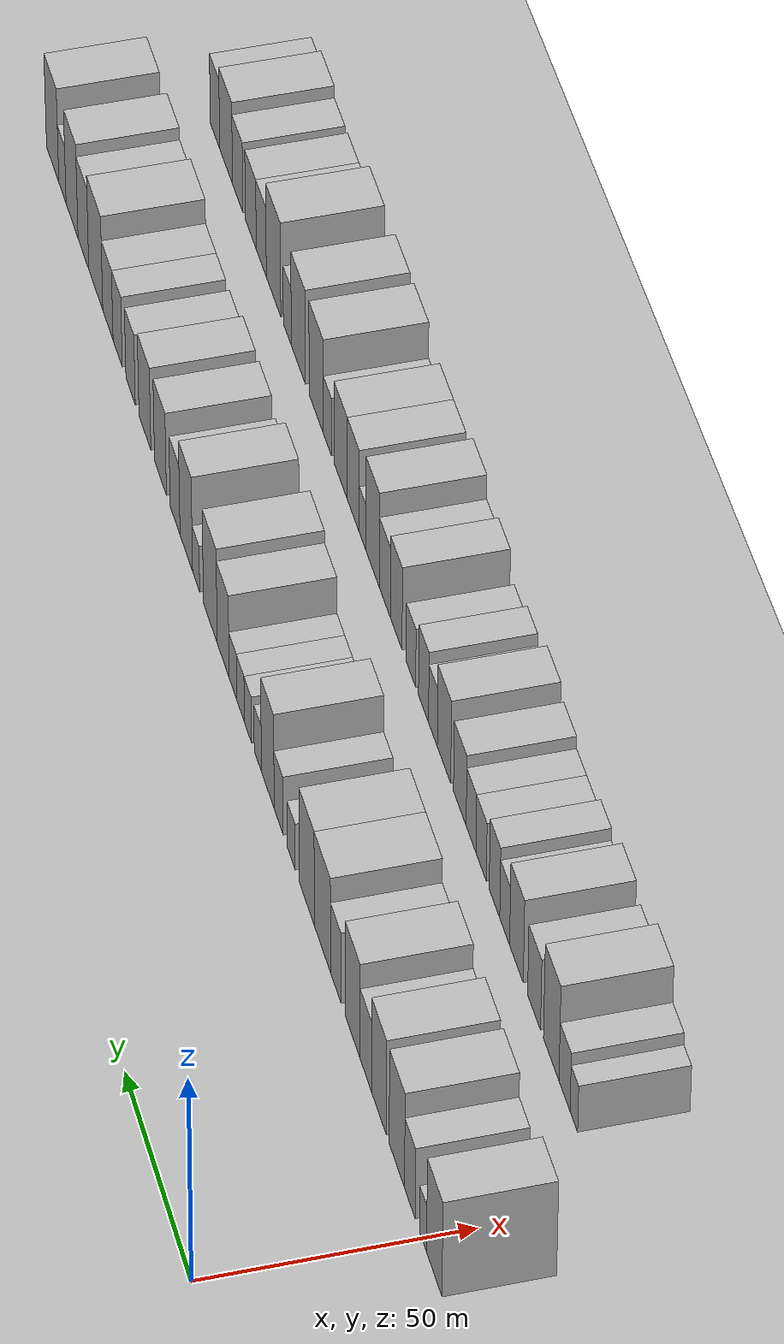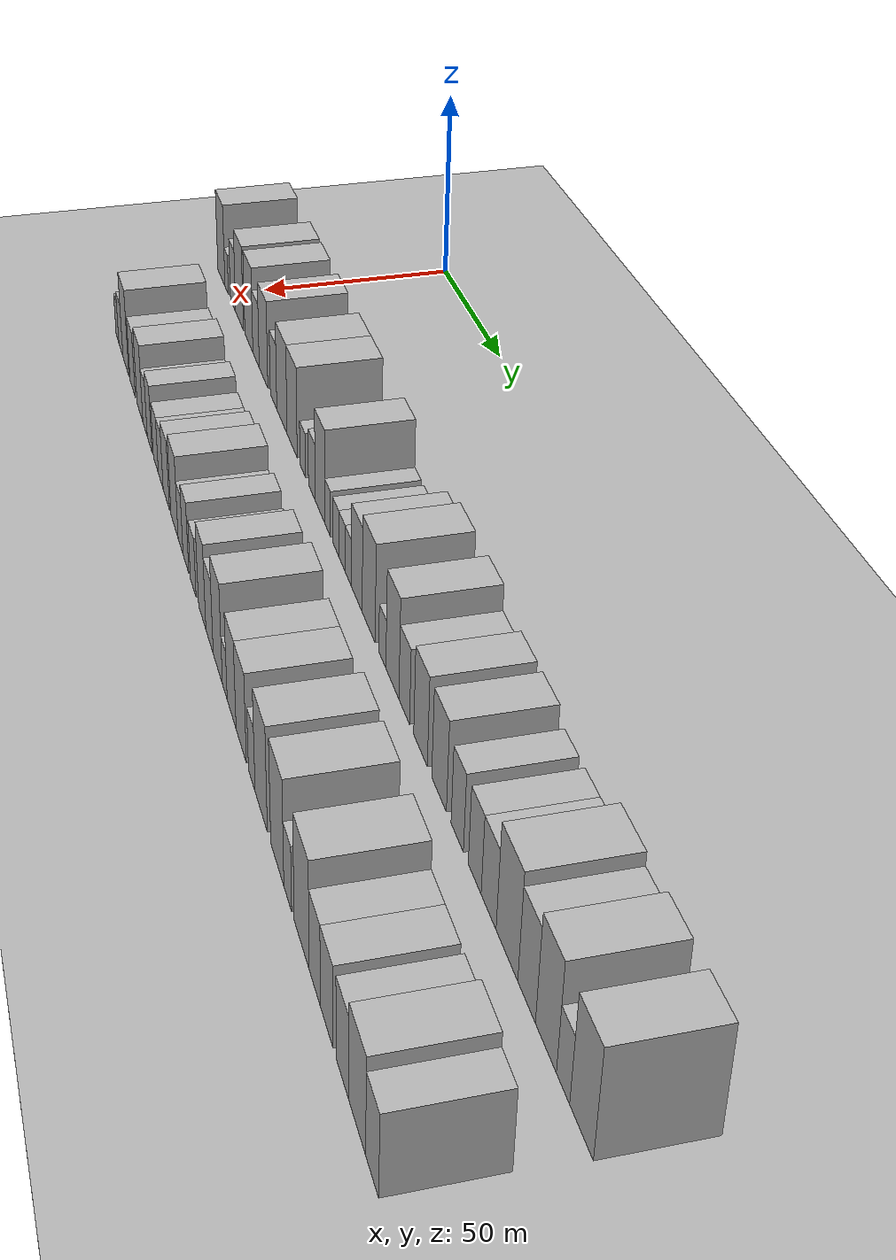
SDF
<sdf version="1.6">
 <world name="default">
  <include><name>ground_plane_1</name><uri>model://HANNAS_ground_plane</uri></include>
  <include>
   <name>ground_plane_2</name>
   <uri>model://HANNAS_ground_plane</uri>
   <pose>100 0 0  0 0 0</pose>
  </include>
  <model name="building_31">
   <static>1</static>
   <pose>50.0000 -8.8309 0 0.000000 0.000000 0.000000</pose>
   <link name="link">
    <pose>0 0 12.00 0 0 0</pose>
    <collision name="collision"><geometry><box><size>20.0000 10.4532 24.0000</size></box></geometry></collision>
    <visual name="visual">
     <cast_shadows>0</cast_shadows>
     <geometry><box><size>20.0000 10.4532 24.0000</size></box></geometry>
     <material>
      <script>
       <uri>model://HANNAS_wall/materials/scripts</uri>
       <uri>model://HANNAS_wall/materials/textures</uri>
       <name>vrc/HANNAS_wall</name>
      </script>
     </material>
    </visual>
   </link>
  </model>
  <model name="building_32">
   <static>1</static>
   <pose>50.0000 -1.1557 0 0.000000 0.000000 0.000000</pose>
   <link name="link">
    <pose>0 0 6.00 0 0 0</pose>
    <collision name="collision"><geometry><box><size>20.0000 4.8971 12.0000</size></box></geometry></collision>
    <visual name="visual">
     <cast_shadows>0</cast_shadows>
     <geometry><box><size>20.0000 4.8971 12.0000</size></box></geometry>
     <material>
      <script>
       <uri>model://HANNAS_wall/materials/scripts</uri>
       <uri>model://HANNAS_wall/materials/textures</uri>
       <name>vrc/HANNAS_wall</name>
      </script>
     </material>
    </visual>
   </link>
  </model>
  <model name="building_33">
   <static>1</static>
   <pose>50.0000 7.9484 0 0.000000 0.000000 0.000000</pose>
   <link name="link">
    <pose>0 0 9.00 0 0 0</pose>
    <collision name="collision"><geometry><box><size>20.0000 7.3112 18.0000</size></box></geometry></collision>
    <visual name="visual">
     <cast_shadows>0</cast_shadows>
     <geometry><box><size>20.0000 7.3112 18.0000</size></box></geometry>
     <material>
      <script>
       <uri>model://HANNAS_wall/materials/scripts</uri>
       <uri>model://HANNAS_wall/materials/textures</uri>
       <name>vrc/HANNAS_wall</name>
      </script>
     </material>
    </visual>
   </link>
  </model>
  <model name="building_34">
   <static>1</static>
   <pose>50.0000 16.9295 0 0.000000 0.000000 0.000000</pose>
   <link name="link">
    <pose>0 0 12.00 0 0 0</pose>
    <collision name="collision"><geometry><box><size>20.0000 10.6510 24.0000</size></box></geometry></collision>
    <visual name="visual">
     <cast_shadows>0</cast_shadows>
     <geometry><box><size>20.0000 10.6510 24.0000</size></box></geometry>
     <material>
      <script>
       <uri>model://HANNAS_wall/materials/scripts</uri>
       <uri>model://HANNAS_wall/materials/textures</uri>
       <name>vrc/HANNAS_wall</name>
      </script>
     </material>
    </visual>
   </link>
  </model>
  <model name="building_35">
   <static>1</static>
   <pose>50.0000 29.4713 0 0.000000 0.000000 0.000000</pose>
   <link name="link">
    <pose>0 0 12.00 0 0 0</pose>
    <collision name="collision"><geometry><box><size>20.0000 10.4326 24.0000</size></box></geometry></collision>
    <visual name="visual">
     <cast_shadows>0</cast_shadows>
     <geometry><box><size>20.0000 10.4326 24.0000</size></box></geometry>
     <material>
      <script>
       <uri>model://HANNAS_wall/materials/scripts</uri>
       <uri>model://HANNAS_wall/materials/textures</uri>
       <name>vrc/HANNAS_wall</name>
      </script>
     </material>
    </visual>
   </link>
  </model>
  <model name="building_36">
   <static>1</static>
   <pose>50.0000 38.7180 0 0.000000 0.000000 0.000000</pose>
   <link name="link">
    <pose>0 0 9.00 0 0 0</pose>
    <collision name="collision"><geometry><box><size>20.0000 8.0610 18.0000</size></box></geometry></collision>
    <visual name="visual">
     <cast_shadows>0</cast_shadows>
     <geometry><box><size>20.0000 8.0610 18.0000</size></box></geometry>
     <material>
      <script>
       <uri>model://HANNAS_wall/materials/scripts</uri>
       <uri>model://HANNAS_wall/materials/textures</uri>
       <name>vrc/HANNAS_wall</name>
      </script>
     </material>
    </visual>
   </link>
  </model>
  <model name="building_37">
   <static>1</static>
   <pose>50.0000 48.0742 0 0.000000 0.000000 0.000000</pose>
   <link name="link">
    <pose>0 0 12.00 0 0 0</pose>
    <collision name="collision"><geometry><box><size>20.0000 10.6514 24.0000</size></box></geometry></collision>
    <visual name="visual">
     <cast_shadows>0</cast_shadows>
     <geometry><box><size>20.0000 10.6514 24.0000</size></box></geometry>
     <material>
      <script>
       <uri>model://HANNAS_wall/materials/scripts</uri>
       <uri>model://HANNAS_wall/materials/textures</uri>
       <name>vrc/HANNAS_wall</name>
      </script>
     </material>
    </visual>
   </link>
  </model>
  <model name="building_38">
   <static>1</static>
   <pose>50.0000 60.2064 0 0.000000 0.000000 0.000000</pose>
   <link name="link">
    <pose>0 0 9.00 0 0 0</pose>
    <collision name="collision"><geometry><box><size>20.0000 7.6129 18.0000</size></box></geometry></collision>
    <visual name="visual">
     <cast_shadows>0</cast_shadows>
     <geometry><box><size>20.0000 7.6129 18.0000</size></box></geometry>
     <material>
      <script>
       <uri>model://HANNAS_wall/materials/scripts</uri>
       <uri>model://HANNAS_wall/materials/textures</uri>
       <name>vrc/HANNAS_wall</name>
      </script>
     </material>
    </visual>
   </link>
  </model>
  <model name="building_39">
   <static>1</static>
   <pose>50.0000 69.8949 0 0.000000 0.000000 0.000000</pose>
   <link name="link">
    <pose>0 0 12.00 0 0 0</pose>
    <collision name="collision"><geometry><box><size>20.0000 11.7640 24.0000</size></box></geometry></collision>
    <visual name="visual">
     <cast_shadows>0</cast_shadows>
     <geometry><box><size>20.0000 11.7640 24.0000</size></box></geometry>
     <material>
      <script>
       <uri>model://HANNAS_wall/materials/scripts</uri>
       <uri>model://HANNAS_wall/materials/textures</uri>
       <name>vrc/HANNAS_wall</name>
      </script>
     </material>
    </visual>
   </link>
  </model>
  <model name="building_40">
   <static>1</static>
   <pose>50.0000 81.3257 0 0.000000 0.000000 0.000000</pose>
   <link name="link">
    <pose>0 0 12.00 0 0 0</pose>
    <collision name="collision"><geometry><box><size>20.0000 11.0977 24.0000</size></box></geometry></collision>
    <visual name="visual">
     <cast_shadows>0</cast_shadows>
     <geometry><box><size>20.0000 11.0977 24.0000</size></box></geometry>
     <material>
      <script>
       <uri>model://HANNAS_wall/materials/scripts</uri>
       <uri>model://HANNAS_wall/materials/textures</uri>
       <name>vrc/HANNAS_wall</name>
      </script>
     </material>
    </visual>
   </link>
  </model>
  <model name="building_41">
   <static>1</static>
   <pose>50.0000 92.8498 0 0.000000 0.000000 0.000000</pose>
   <link name="link">
    <pose>0 0 6.00 0 0 0</pose>
    <collision name="collision"><geometry><box><size>20.0000 5.9505 12.0000</size></box></geometry></collision>
    <visual name="visual">
     <cast_shadows>0</cast_shadows>
     <geometry><box><size>20.0000 5.9505 12.0000</size></box></geometry>
     <material>
      <script>
       <uri>model://HANNAS_wall/materials/scripts</uri>
       <uri>model://HANNAS_wall/materials/textures</uri>
       <name>vrc/HANNAS_wall</name>
      </script>
     </material>
    </visual>
   </link>
  </model>
  <model name="building_42">
   <static>1</static>
   <pose>50.0000 102.1915 0 0.000000 0.000000 0.000000</pose>
   <link name="link">
    <pose>0 0 7.50 0 0 0</pose>
    <collision name="collision"><geometry><box><size>20.0000 6.7328 15.0000</size></box></geometry></collision>
    <visual name="visual">
     <cast_shadows>0</cast_shadows>
     <geometry><box><size>20.0000 6.7328 15.0000</size></box></geometry>
     <material>
      <script>
       <uri>model://HANNAS_wall/materials/scripts</uri>
       <uri>model://HANNAS_wall/materials/textures</uri>
       <name>vrc/HANNAS_wall</name>
      </script>
     </material>
    </visual>
   </link>
  </model>
  <model name="building_43">
   <static>1</static>
   <pose>50.0000 110.3665 0 0.000000 0.000000 0.000000</pose>
   <link name="link">
    <pose>0 0 12.00 0 0 0</pose>
    <collision name="collision"><geometry><box><size>20.0000 9.6173 24.0000</size></box></geometry></collision>
    <visual name="visual">
     <cast_shadows>0</cast_shadows>
     <geometry><box><size>20.0000 9.6173 24.0000</size></box></geometry>
     <material>
      <script>
       <uri>model://HANNAS_wall/materials/scripts</uri>
       <uri>model://HANNAS_wall/materials/textures</uri>
       <name>vrc/HANNAS_wall</name>
      </script>
     </material>
    </visual>
   </link>
  </model>
  <model name="building_44">
   <static>1</static>
   <pose>50.0000 117.9089 0 0.000000 0.000000 0.000000</pose>
   <link name="link">
    <pose>0 0 6.00 0 0 0</pose>
    <collision name="collision"><geometry><box><size>20.0000 5.4675 12.0000</size></box></geometry></collision>
    <visual name="visual">
     <cast_shadows>0</cast_shadows>
     <geometry><box><size>20.0000 5.4675 12.0000</size></box></geometry>
     <material>
      <script>
       <uri>model://HANNAS_wall/materials/scripts</uri>
       <uri>model://HANNAS_wall/materials/textures</uri>
       <name>vrc/HANNAS_wall</name>
      </script>
     </material>
    </visual>
   </link>
  </model>
  <model name="building_45">
   <static>1</static>
   <pose>50.0000 125.4124 0 0.000000 0.000000 0.000000</pose>
   <link name="link">
    <pose>0 0 6.00 0 0 0</pose>
    <collision name="collision"><geometry><box><size>20.0000 5.5394 12.0000</size></box></geometry></collision>
    <visual name="visual">
     <cast_shadows>0</cast_shadows>
     <geometry><box><size>20.0000 5.5394 12.0000</size></box></geometry>
     <material>
      <script>
       <uri>model://HANNAS_wall/materials/scripts</uri>
       <uri>model://HANNAS_wall/materials/textures</uri>
       <name>vrc/HANNAS_wall</name>
      </script>
     </material>
    </visual>
   </link>
  </model>
  <model name="building_46">
   <static>1</static>
   <pose>50.0000 131.1066 0 0.000000 0.000000 0.000000</pose>
   <link name="link">
    <pose>0 0 6.00 0 0 0</pose>
    <collision name="collision"><geometry><box><size>20.0000 5.8488 12.0000</size></box></geometry></collision>
    <visual name="visual">
     <cast_shadows>0</cast_shadows>
     <geometry><box><size>20.0000 5.8488 12.0000</size></box></geometry>
     <material>
      <script>
       <uri>model://HANNAS_wall/materials/scripts</uri>
       <uri>model://HANNAS_wall/materials/textures</uri>
       <name>vrc/HANNAS_wall</name>
      </script>
     </material>
    </visual>
   </link>
  </model>
  <model name="building_47">
   <static>1</static>
   <pose>50.0000 136.9455 0 0.000000 0.000000 0.000000</pose>
   <link name="link">
    <pose>0 0 6.00 0 0 0</pose>
    <collision name="collision"><geometry><box><size>20.0000 5.8291 12.0000</size></box></geometry></collision>
    <visual name="visual">
     <cast_shadows>0</cast_shadows>
     <geometry><box><size>20.0000 5.8291 12.0000</size></box></geometry>
     <material>
      <script>
       <uri>model://HANNAS_wall/materials/scripts</uri>
       <uri>model://HANNAS_wall/materials/textures</uri>
       <name>vrc/HANNAS_wall</name>
      </script>
     </material>
    </visual>
   </link>
  </model>
  <model name="building_48">
   <static>1</static>
   <pose>50.0000 144.4742 0 0.000000 0.000000 0.000000</pose>
   <link name="link">
    <pose>0 0 10.50 0 0 0</pose>
    <collision name="collision"><geometry><box><size>20.0000 9.2283 21.0000</size></box></geometry></collision>
    <visual name="visual">
     <cast_shadows>0</cast_shadows>
     <geometry><box><size>20.0000 9.2283 21.0000</size></box></geometry>
     <material>
      <script>
       <uri>model://HANNAS_wall/materials/scripts</uri>
       <uri>model://HANNAS_wall/materials/textures</uri>
       <name>vrc/HANNAS_wall</name>
      </script>
     </material>
    </visual>
   </link>
  </model>
  <model name="building_49">
   <static>1</static>
   <pose>50.0000 154.4830 0 0.000000 0.000000 0.000000</pose>
   <link name="link">
    <pose>0 0 12.00 0 0 0</pose>
    <collision name="collision"><geometry><box><size>20.0000 10.7894 24.0000</size></box></geometry></collision>
    <visual name="visual">
     <cast_shadows>0</cast_shadows>
     <geometry><box><size>20.0000 10.7894 24.0000</size></box></geometry>
     <material>
      <script>
       <uri>model://HANNAS_wall/materials/scripts</uri>
       <uri>model://HANNAS_wall/materials/textures</uri>
       <name>vrc/HANNAS_wall</name>
      </script>
     </material>
    </visual>
   </link>
  </model>
  <model name="building_50">
   <static>1</static>
   <pose>50.0000 165.6741 0 0.000000 0.000000 0.000000</pose>
   <link name="link">
    <pose>0 0 6.00 0 0 0</pose>
    <collision name="collision"><geometry><box><size>20.0000 5.5927 12.0000</size></box></geometry></collision>
    <visual name="visual">
     <cast_shadows>0</cast_shadows>
     <geometry><box><size>20.0000 5.5927 12.0000</size></box></geometry>
     <material>
      <script>
       <uri>model://HANNAS_wall/materials/scripts</uri>
       <uri>model://HANNAS_wall/materials/textures</uri>
       <name>vrc/HANNAS_wall</name>
      </script>
     </material>
    </visual>
   </link>
  </model>
  <model name="building_51">
   <static>1</static>
   <pose>50.0000 173.4579 0 0.000000 0.000000 0.000000</pose>
   <link name="link">
    <pose>0 0 12.00 0 0 0</pose>
    <collision name="collision"><geometry><box><size>20.0000 9.9750 24.0000</size></box></geometry></collision>
    <visual name="visual">
     <cast_shadows>0</cast_shadows>
     <geometry><box><size>20.0000 9.9750 24.0000</size></box></geometry>
     <material>
      <script>
       <uri>model://HANNAS_wall/materials/scripts</uri>
       <uri>model://HANNAS_wall/materials/textures</uri>
       <name>vrc/HANNAS_wall</name>
      </script>
     </material>
    </visual>
   </link>
  </model>
  <model name="building_52">
   <static>1</static>
   <pose>50.0000 182.3927 0 0.000000 0.000000 0.000000</pose>
   <link name="link">
    <pose>0 0 9.00 0 0 0</pose>
    <collision name="collision"><geometry><box><size>20.0000 7.8946 18.0000</size></box></geometry></collision>
    <visual name="visual">
     <cast_shadows>0</cast_shadows>
     <geometry><box><size>20.0000 7.8946 18.0000</size></box></geometry>
     <material>
      <script>
       <uri>model://HANNAS_wall/materials/scripts</uri>
       <uri>model://HANNAS_wall/materials/textures</uri>
       <name>vrc/HANNAS_wall</name>
      </script>
     </material>
    </visual>
   </link>
  </model>
  <model name="building_53">
   <static>1</static>
   <pose>50.0000 194.1213 0 0.000000 0.000000 0.000000</pose>
   <link name="link">
    <pose>0 0 10.50 0 0 0</pose>
    <collision name="collision"><geometry><box><size>20.0000 9.5626 21.0000</size></box></geometry></collision>
    <visual name="visual">
     <cast_shadows>0</cast_shadows>
     <geometry><box><size>20.0000 9.5626 21.0000</size></box></geometry>
     <material>
      <script>
       <uri>model://HANNAS_wall/materials/scripts</uri>
       <uri>model://HANNAS_wall/materials/textures</uri>
       <name>vrc/HANNAS_wall</name>
      </script>
     </material>
    </visual>
   </link>
  </model>
  <model name="building_54">
   <static>1</static>
   <pose>50.0000 206.7688 0 0.000000 0.000000 0.000000</pose>
   <link name="link">
    <pose>0 0 10.50 0 0 0</pose>
    <collision name="collision"><geometry><box><size>20.0000 9.7323 21.0000</size></box></geometry></collision>
    <visual name="visual">
     <cast_shadows>0</cast_shadows>
     <geometry><box><size>20.0000 9.7323 21.0000</size></box></geometry>
     <material>
      <script>
       <uri>model://HANNAS_wall/materials/scripts</uri>
       <uri>model://HANNAS_wall/materials/textures</uri>
       <name>vrc/HANNAS_wall</name>
      </script>
     </material>
    </visual>
   </link>
  </model>
  <model name="building_55">
   <static>1</static>
   <pose>50.0000 218.5100 0 0.000000 0.000000 0.000000</pose>
   <link name="link">
    <pose>0 0 9.00 0 0 0</pose>
    <collision name="collision"><geometry><box><size>20.0000 7.7501 18.0000</size></box></geometry></collision>
    <visual name="visual">
     <cast_shadows>0</cast_shadows>
     <geometry><box><size>20.0000 7.7501 18.0000</size></box></geometry>
     <material>
      <script>
       <uri>model://HANNAS_wall/materials/scripts</uri>
       <uri>model://HANNAS_wall/materials/textures</uri>
       <name>vrc/HANNAS_wall</name>
      </script>
     </material>
    </visual>
   </link>
  </model>
  <model name="building_56">
   <static>1</static>
   <pose>50.0000 229.2136 0 0.000000 0.000000 0.000000</pose>
   <link name="link">
    <pose>0 0 9.00 0 0 0</pose>
    <collision name="collision"><geometry><box><size>20.0000 7.6571 18.0000</size></box></geometry></collision>
    <visual name="visual">
     <cast_shadows>0</cast_shadows>
     <geometry><box><size>20.0000 7.6571 18.0000</size></box></geometry>
     <material>
      <script>
       <uri>model://HANNAS_wall/materials/scripts</uri>
       <uri>model://HANNAS_wall/materials/textures</uri>
       <name>vrc/HANNAS_wall</name>
      </script>
     </material>
    </visual>
   </link>
  </model>
  <model name="building_57">
   <static>1</static>
   <pose>50.0000 237.3342 0 0.000000 0.000000 0.000000</pose>
   <link name="link">
    <pose>0 0 9.00 0 0 0</pose>
    <collision name="collision"><geometry><box><size>20.0000 8.5839 18.0000</size></box></geometry></collision>
    <visual name="visual">
     <cast_shadows>0</cast_shadows>
     <geometry><box><size>20.0000 8.5839 18.0000</size></box></geometry>
     <material>
      <script>
       <uri>model://HANNAS_wall/materials/scripts</uri>
       <uri>model://HANNAS_wall/materials/textures</uri>
       <name>vrc/HANNAS_wall</name>
      </script>
     </material>
    </visual>
   </link>
  </model>
  <model name="building_58">
   <static>1</static>
   <pose>50.0000 247.5297 0 0.000000 0.000000 0.000000</pose>
   <link name="link">
    <pose>0 0 12.00 0 0 0</pose>
    <collision name="collision"><geometry><box><size>20.0000 11.8071 24.0000</size></box></geometry></collision>
    <visual name="visual">
     <cast_shadows>0</cast_shadows>
     <geometry><box><size>20.0000 11.8071 24.0000</size></box></geometry>
     <material>
      <script>
       <uri>model://HANNAS_wall/materials/scripts</uri>
       <uri>model://HANNAS_wall/materials/textures</uri>
       <name>vrc/HANNAS_wall</name>
      </script>
     </material>
    </visual>
   </link>
  </model>
  <model name="building_59">
   <static>1</static>
   <pose>50.0000 257.9960 0 0.000000 0.000000 0.000000</pose>
   <link name="link">
    <pose>0 0 10.50 0 0 0</pose>
    <collision name="collision"><geometry><box><size>20.0000 9.1255 21.0000</size></box></geometry></collision>
    <visual name="visual">
     <cast_shadows>0</cast_shadows>
     <geometry><box><size>20.0000 9.1255 21.0000</size></box></geometry>
     <material>
      <script>
       <uri>model://HANNAS_wall/materials/scripts</uri>
       <uri>model://HANNAS_wall/materials/textures</uri>
       <name>vrc/HANNAS_wall</name>
      </script>
     </material>
    </visual>
   </link>
  </model>
  <model name="building_60">
   <static>1</static>
   <pose>50.0000 267.6939 0 0.000000 0.000000 0.000000</pose>
   <link name="link">
    <pose>0 0 12.00 0 0 0</pose>
    <collision name="collision"><geometry><box><size>20.0000 10.2703 24.0000</size></box></geometry></collision>
    <visual name="visual">
     <cast_shadows>0</cast_shadows>
     <geometry><box><size>20.0000 10.2703 24.0000</size></box></geometry>
     <material>
      <script>
       <uri>model://HANNAS_wall/materials/scripts</uri>
       <uri>model://HANNAS_wall/materials/textures</uri>
       <name>vrc/HANNAS_wall</name>
      </script>
     </material>
    </visual>
   </link>
  </model>
  <model name="building_61">
   <static>1</static>
   <pose>50.0000 275.9424 0 0.000000 0.000000 0.000000</pose>
   <link name="link">
    <pose>0 0 7.50 0 0 0</pose>
    <collision name="collision"><geometry><box><size>20.0000 6.2268 15.0000</size></box></geometry></collision>
    <visual name="visual">
     <cast_shadows>0</cast_shadows>
     <geometry><box><size>20.0000 6.2268 15.0000</size></box></geometry>
     <material>
      <script>
       <uri>model://HANNAS_wall/materials/scripts</uri>
       <uri>model://HANNAS_wall/materials/textures</uri>
       <name>vrc/HANNAS_wall</name>
      </script>
     </material>
    </visual>
   </link>
  </model>
  <model name="building_62">
   <static>1</static>
   <pose>50.0000 284.3714 0 0.000000 0.000000 0.000000</pose>
   <link name="link">
    <pose>0 0 12.00 0 0 0</pose>
    <collision name="collision"><geometry><box><size>20.0000 10.6311 24.0000</size></box></geometry></collision>
    <visual name="visual">
     <cast_shadows>0</cast_shadows>
     <geometry><box><size>20.0000 10.6311 24.0000</size></box></geometry>
     <material>
      <script>
       <uri>model://HANNAS_wall/materials/scripts</uri>
       <uri>model://HANNAS_wall/materials/textures</uri>
       <name>vrc/HANNAS_wall</name>
      </script>
     </material>
    </visual>
   </link>
  </model>
  <model name="building_95">
   <static>1</static>
   <pose>82.0000 19.4868 0 0.000000 0.000000 0.000000</pose>
   <link name="link">
    <pose>0 0 6.00 0 0 0</pose>
    <collision name="collision"><geometry><box><size>20.0000 5.0243 12.0000</size></box></geometry></collision>
    <visual name="visual">
     <cast_shadows>0</cast_shadows>
     <geometry><box><size>20.0000 5.0243 12.0000</size></box></geometry>
     <material>
      <script>
       <uri>model://HANNAS_wall/materials/scripts</uri>
       <uri>model://HANNAS_wall/materials/textures</uri>
       <name>vrc/HANNAS_wall</name>
      </script>
     </material>
    </visual>
   </link>
  </model>
  <model name="building_96">
   <static>1</static>
   <pose>82.0000 25.7106 0 0.000000 0.000000 0.000000</pose>
   <link name="link">
    <pose>0 0 7.50 0 0 0</pose>
    <collision name="collision"><geometry><box><size>20.0000 7.4233 15.0000</size></box></geometry></collision>
    <visual name="visual">
     <cast_shadows>0</cast_shadows>
     <geometry><box><size>20.0000 7.4233 15.0000</size></box></geometry>
     <material>
      <script>
       <uri>model://HANNAS_wall/materials/scripts</uri>
       <uri>model://HANNAS_wall/materials/textures</uri>
       <name>vrc/HANNAS_wall</name>
      </script>
     </material>
    </visual>
   </link>
  </model>
  <model name="building_97">
   <static>1</static>
   <pose>82.0000 34.6223 0 0.000000 0.000000 0.000000</pose>
   <link name="link">
    <pose>0 0 12.00 0 0 0</pose>
    <collision name="collision"><geometry><box><size>20.0000 10.4001 24.0000</size></box></geometry></collision>
    <visual name="visual">
     <cast_shadows>0</cast_shadows>
     <geometry><box><size>20.0000 10.4001 24.0000</size></box></geometry>
     <material>
      <script>
       <uri>model://HANNAS_wall/materials/scripts</uri>
       <uri>model://HANNAS_wall/materials/textures</uri>
       <name>vrc/HANNAS_wall</name>
      </script>
     </material>
    </visual>
   </link>
  </model>
  <model name="building_98">
   <static>1</static>
   <pose>82.0000 46.1808 0 0.000000 0.000000 0.000000</pose>
   <link name="link">
    <pose>0 0 9.00 0 0 0</pose>
    <collision name="collision"><geometry><box><size>20.0000 8.7170 18.0000</size></box></geometry></collision>
    <visual name="visual">
     <cast_shadows>0</cast_shadows>
     <geometry><box><size>20.0000 8.7170 18.0000</size></box></geometry>
     <material>
      <script>
       <uri>model://HANNAS_wall/materials/scripts</uri>
       <uri>model://HANNAS_wall/materials/textures</uri>
       <name>vrc/HANNAS_wall</name>
      </script>
     </material>
    </visual>
   </link>
  </model>
  <model name="building_99">
   <static>1</static>
   <pose>82.0000 58.2234 0 0.000000 0.000000 0.000000</pose>
   <link name="link">
    <pose>0 0 10.50 0 0 0</pose>
    <collision name="collision"><geometry><box><size>20.0000 9.3681 21.0000</size></box></geometry></collision>
    <visual name="visual">
     <cast_shadows>0</cast_shadows>
     <geometry><box><size>20.0000 9.3681 21.0000</size></box></geometry>
     <material>
      <script>
       <uri>model://HANNAS_wall/materials/scripts</uri>
       <uri>model://HANNAS_wall/materials/textures</uri>
       <name>vrc/HANNAS_wall</name>
      </script>
     </material>
    </visual>
   </link>
  </model>
  <model name="building_100">
   <static>1</static>
   <pose>82.0000 66.3104 0 0.000000 0.000000 0.000000</pose>
   <link name="link">
    <pose>0 0 7.50 0 0 0</pose>
    <collision name="collision"><geometry><box><size>20.0000 6.8059 15.0000</size></box></geometry></collision>
    <visual name="visual">
     <cast_shadows>0</cast_shadows>
     <geometry><box><size>20.0000 6.8059 15.0000</size></box></geometry>
     <material>
      <script>
       <uri>model://HANNAS_wall/materials/scripts</uri>
       <uri>model://HANNAS_wall/materials/textures</uri>
       <name>vrc/HANNAS_wall</name>
      </script>
     </material>
    </visual>
   </link>
  </model>
  <model name="building_101">
   <static>1</static>
   <pose>82.0000 73.3747 0 0.000000 0.000000 0.000000</pose>
   <link name="link">
    <pose>0 0 9.00 0 0 0</pose>
    <collision name="collision"><geometry><box><size>20.0000 7.3228 18.0000</size></box></geometry></collision>
    <visual name="visual">
     <cast_shadows>0</cast_shadows>
     <geometry><box><size>20.0000 7.3228 18.0000</size></box></geometry>
     <material>
      <script>
       <uri>model://HANNAS_wall/materials/scripts</uri>
       <uri>model://HANNAS_wall/materials/textures</uri>
       <name>vrc/HANNAS_wall</name>
      </script>
     </material>
    </visual>
   </link>
  </model>
  <model name="building_102">
   <static>1</static>
   <pose>82.0000 82.6854 0 0.000000 0.000000 0.000000</pose>
   <link name="link">
    <pose>0 0 7.50 0 0 0</pose>
    <collision name="collision"><geometry><box><size>20.0000 7.2987 15.0000</size></box></geometry></collision>
    <visual name="visual">
     <cast_shadows>0</cast_shadows>
     <geometry><box><size>20.0000 7.2987 15.0000</size></box></geometry>
     <material>
      <script>
       <uri>model://HANNAS_wall/materials/scripts</uri>
       <uri>model://HANNAS_wall/materials/textures</uri>
       <name>vrc/HANNAS_wall</name>
      </script>
     </material>
    </visual>
   </link>
  </model>
  <model name="building_103">
   <static>1</static>
   <pose>82.0000 89.7797 0 0.000000 0.000000 0.000000</pose>
   <link name="link">
    <pose>0 0 7.50 0 0 0</pose>
    <collision name="collision"><geometry><box><size>20.0000 6.8898 15.0000</size></box></geometry></collision>
    <visual name="visual">
     <cast_shadows>0</cast_shadows>
     <geometry><box><size>20.0000 6.8898 15.0000</size></box></geometry>
     <material>
      <script>
       <uri>model://HANNAS_wall/materials/scripts</uri>
       <uri>model://HANNAS_wall/materials/textures</uri>
       <name>vrc/HANNAS_wall</name>
      </script>
     </material>
    </visual>
   </link>
  </model>
  <model name="building_104">
   <static>1</static>
   <pose>82.0000 97.7027 0 0.000000 0.000000 0.000000</pose>
   <link name="link">
    <pose>0 0 9.00 0 0 0</pose>
    <collision name="collision"><geometry><box><size>20.0000 8.9562 18.0000</size></box></geometry></collision>
    <visual name="visual">
     <cast_shadows>0</cast_shadows>
     <geometry><box><size>20.0000 8.9562 18.0000</size></box></geometry>
     <material>
      <script>
       <uri>model://HANNAS_wall/materials/scripts</uri>
       <uri>model://HANNAS_wall/materials/textures</uri>
       <name>vrc/HANNAS_wall</name>
      </script>
     </material>
    </visual>
   </link>
  </model>
  <model name="building_105">
   <static>1</static>
   <pose>82.0000 108.9585 0 0.000000 0.000000 0.000000</pose>
   <link name="link">
    <pose>0 0 10.50 0 0 0</pose>
    <collision name="collision"><geometry><box><size>20.0000 9.5555 21.0000</size></box></geometry></collision>
    <visual name="visual">
     <cast_shadows>0</cast_shadows>
     <geometry><box><size>20.0000 9.5555 21.0000</size></box></geometry>
     <material>
      <script>
       <uri>model://HANNAS_wall/materials/scripts</uri>
       <uri>model://HANNAS_wall/materials/textures</uri>
       <name>vrc/HANNAS_wall</name>
      </script>
     </material>
    </visual>
   </link>
  </model>
  <model name="building_106">
   <static>1</static>
   <pose>82.0000 116.9124 0 0.000000 0.000000 0.000000</pose>
   <link name="link">
    <pose>0 0 7.50 0 0 0</pose>
    <collision name="collision"><geometry><box><size>20.0000 6.3523 15.0000</size></box></geometry></collision>
    <visual name="visual">
     <cast_shadows>0</cast_shadows>
     <geometry><box><size>20.0000 6.3523 15.0000</size></box></geometry>
     <material>
      <script>
       <uri>model://HANNAS_wall/materials/scripts</uri>
       <uri>model://HANNAS_wall/materials/textures</uri>
       <name>vrc/HANNAS_wall</name>
      </script>
     </material>
    </visual>
   </link>
  </model>
  <model name="building_107">
   <static>1</static>
   <pose>82.0000 123.7393 0 0.000000 0.000000 0.000000</pose>
   <link name="link">
    <pose>0 0 9.00 0 0 0</pose>
    <collision name="collision"><geometry><box><size>20.0000 7.3015 18.0000</size></box></geometry></collision>
    <visual name="visual">
     <cast_shadows>0</cast_shadows>
     <geometry><box><size>20.0000 7.3015 18.0000</size></box></geometry>
     <material>
      <script>
       <uri>model://HANNAS_wall/materials/scripts</uri>
       <uri>model://HANNAS_wall/materials/textures</uri>
       <name>vrc/HANNAS_wall</name>
      </script>
     </material>
    </visual>
   </link>
  </model>
  <model name="building_108">
   <static>1</static>
   <pose>82.0000 132.8763 0 0.000000 0.000000 0.000000</pose>
   <link name="link">
    <pose>0 0 7.50 0 0 0</pose>
    <collision name="collision"><geometry><box><size>20.0000 6.9724 15.0000</size></box></geometry></collision>
    <visual name="visual">
     <cast_shadows>0</cast_shadows>
     <geometry><box><size>20.0000 6.9724 15.0000</size></box></geometry>
     <material>
      <script>
       <uri>model://HANNAS_wall/materials/scripts</uri>
       <uri>model://HANNAS_wall/materials/textures</uri>
       <name>vrc/HANNAS_wall</name>
      </script>
     </material>
    </visual>
   </link>
  </model>
  <model name="building_109">
   <static>1</static>
   <pose>82.0000 143.6210 0 0.000000 0.000000 0.000000</pose>
   <link name="link">
    <pose>0 0 10.50 0 0 0</pose>
    <collision name="collision"><geometry><box><size>20.0000 8.5170 21.0000</size></box></geometry></collision>
    <visual name="visual">
     <cast_shadows>0</cast_shadows>
     <geometry><box><size>20.0000 8.5170 21.0000</size></box></geometry>
     <material>
      <script>
       <uri>model://HANNAS_wall/materials/scripts</uri>
       <uri>model://HANNAS_wall/materials/textures</uri>
       <name>vrc/HANNAS_wall</name>
      </script>
     </material>
    </visual>
   </link>
  </model>
  <model name="building_110">
   <static>1</static>
   <pose>82.0000 152.0320 0 0.000000 0.000000 0.000000</pose>
   <link name="link">
    <pose>0 0 9.00 0 0 0</pose>
    <collision name="collision"><geometry><box><size>20.0000 8.3050 18.0000</size></box></geometry></collision>
    <visual name="visual">
     <cast_shadows>0</cast_shadows>
     <geometry><box><size>20.0000 8.3050 18.0000</size></box></geometry>
     <material>
      <script>
       <uri>model://HANNAS_wall/materials/scripts</uri>
       <uri>model://HANNAS_wall/materials/textures</uri>
       <name>vrc/HANNAS_wall</name>
      </script>
     </material>
    </visual>
   </link>
  </model>
  <model name="building_111">
   <static>1</static>
   <pose>82.0000 161.1766 0 0.000000 0.000000 0.000000</pose>
   <link name="link">
    <pose>0 0 12.00 0 0 0</pose>
    <collision name="collision"><geometry><box><size>20.0000 9.9842 24.0000</size></box></geometry></collision>
    <visual name="visual">
     <cast_shadows>0</cast_shadows>
     <geometry><box><size>20.0000 9.9842 24.0000</size></box></geometry>
     <material>
      <script>
       <uri>model://HANNAS_wall/materials/scripts</uri>
       <uri>model://HANNAS_wall/materials/textures</uri>
       <name>vrc/HANNAS_wall</name>
      </script>
     </material>
    </visual>
   </link>
  </model>
  <model name="building_112">
   <static>1</static>
   <pose>82.0000 168.6518 0 0.000000 0.000000 0.000000</pose>
   <link name="link">
    <pose>0 0 6.00 0 0 0</pose>
    <collision name="collision"><geometry><box><size>20.0000 4.9662 12.0000</size></box></geometry></collision>
    <visual name="visual">
     <cast_shadows>0</cast_shadows>
     <geometry><box><size>20.0000 4.9662 12.0000</size></box></geometry>
     <material>
      <script>
       <uri>model://HANNAS_wall/materials/scripts</uri>
       <uri>model://HANNAS_wall/materials/textures</uri>
       <name>vrc/HANNAS_wall</name>
      </script>
     </material>
    </visual>
   </link>
  </model>
  <model name="building_113">
   <static>1</static>
   <pose>82.0000 175.7053 0 0.000000 0.000000 0.000000</pose>
   <link name="link">
    <pose>0 0 10.50 0 0 0</pose>
    <collision name="collision"><geometry><box><size>20.0000 9.1407 21.0000</size></box></geometry></collision>
    <visual name="visual">
     <cast_shadows>0</cast_shadows>
     <geometry><box><size>20.0000 9.1407 21.0000</size></box></geometry>
     <material>
      <script>
       <uri>model://HANNAS_wall/materials/scripts</uri>
       <uri>model://HANNAS_wall/materials/textures</uri>
       <name>vrc/HANNAS_wall</name>
      </script>
     </material>
    </visual>
   </link>
  </model>
  <model name="building_114">
   <static>1</static>
   <pose>82.0000 185.3025 0 0.000000 0.000000 0.000000</pose>
   <link name="link">
    <pose>0 0 10.50 0 0 0</pose>
    <collision name="collision"><geometry><box><size>20.0000 10.0537 21.0000</size></box></geometry></collision>
    <visual name="visual">
     <cast_shadows>0</cast_shadows>
     <geometry><box><size>20.0000 10.0537 21.0000</size></box></geometry>
     <material>
      <script>
       <uri>model://HANNAS_wall/materials/scripts</uri>
       <uri>model://HANNAS_wall/materials/textures</uri>
       <name>vrc/HANNAS_wall</name>
      </script>
     </material>
    </visual>
   </link>
  </model>
  <model name="building_115">
   <static>1</static>
   <pose>82.0000 195.4196 0 0.000000 0.000000 0.000000</pose>
   <link name="link">
    <pose>0 0 7.50 0 0 0</pose>
    <collision name="collision"><geometry><box><size>20.0000 6.1806 15.0000</size></box></geometry></collision>
    <visual name="visual">
     <cast_shadows>0</cast_shadows>
     <geometry><box><size>20.0000 6.1806 15.0000</size></box></geometry>
     <material>
      <script>
       <uri>model://HANNAS_wall/materials/scripts</uri>
       <uri>model://HANNAS_wall/materials/textures</uri>
       <name>vrc/HANNAS_wall</name>
      </script>
     </material>
    </visual>
   </link>
  </model>
  <model name="building_116">
   <static>1</static>
   <pose>82.0000 204.0119 0 0.000000 0.000000 0.000000</pose>
   <link name="link">
    <pose>0 0 12.00 0 0 0</pose>
    <collision name="collision"><geometry><box><size>20.0000 11.0039 24.0000</size></box></geometry></collision>
    <visual name="visual">
     <cast_shadows>0</cast_shadows>
     <geometry><box><size>20.0000 11.0039 24.0000</size></box></geometry>
     <material>
      <script>
       <uri>model://HANNAS_wall/materials/scripts</uri>
       <uri>model://HANNAS_wall/materials/textures</uri>
       <name>vrc/HANNAS_wall</name>
      </script>
     </material>
    </visual>
   </link>
  </model>
  <model name="building_117">
   <static>1</static>
   <pose>82.0000 218.0186 0 0.000000 0.000000 0.000000</pose>
   <link name="link">
    <pose>0 0 12.00 0 0 0</pose>
    <collision name="collision"><geometry><box><size>20.0000 11.0095 24.0000</size></box></geometry></collision>
    <visual name="visual">
     <cast_shadows>0</cast_shadows>
     <geometry><box><size>20.0000 11.0095 24.0000</size></box></geometry>
     <material>
      <script>
       <uri>model://HANNAS_wall/materials/scripts</uri>
       <uri>model://HANNAS_wall/materials/textures</uri>
       <name>vrc/HANNAS_wall</name>
      </script>
     </material>
    </visual>
   </link>
  </model>
  <model name="building_118">
   <static>1</static>
   <pose>82.0000 226.6576 0 0.000000 0.000000 0.000000</pose>
   <link name="link">
    <pose>0 0 7.50 0 0 0</pose>
    <collision name="collision"><geometry><box><size>20.0000 6.2687 15.0000</size></box></geometry></collision>
    <visual name="visual">
     <cast_shadows>0</cast_shadows>
     <geometry><box><size>20.0000 6.2687 15.0000</size></box></geometry>
     <material>
      <script>
       <uri>model://HANNAS_wall/materials/scripts</uri>
       <uri>model://HANNAS_wall/materials/textures</uri>
       <name>vrc/HANNAS_wall</name>
      </script>
     </material>
    </visual>
   </link>
  </model>
  <model name="building_119">
   <static>1</static>
   <pose>82.0000 237.5500 0 0.000000 0.000000 0.000000</pose>
   <link name="link">
    <pose>0 0 12.00 0 0 0</pose>
    <collision name="collision"><geometry><box><size>20.0000 11.5160 24.0000</size></box></geometry></collision>
    <visual name="visual">
     <cast_shadows>0</cast_shadows>
     <geometry><box><size>20.0000 11.5160 24.0000</size></box></geometry>
     <material>
      <script>
       <uri>model://HANNAS_wall/materials/scripts</uri>
       <uri>model://HANNAS_wall/materials/textures</uri>
       <name>vrc/HANNAS_wall</name>
      </script>
     </material>
    </visual>
   </link>
  </model>
  <model name="building_120">
   <static>1</static>
   <pose>82.0000 247.3469 0 0.000000 0.000000 0.000000</pose>
   <link name="link">
    <pose>0 0 9.00 0 0 0</pose>
    <collision name="collision"><geometry><box><size>20.0000 8.0778 18.0000</size></box></geometry></collision>
    <visual name="visual">
     <cast_shadows>0</cast_shadows>
     <geometry><box><size>20.0000 8.0778 18.0000</size></box></geometry>
     <material>
      <script>
       <uri>model://HANNAS_wall/materials/scripts</uri>
       <uri>model://HANNAS_wall/materials/textures</uri>
       <name>vrc/HANNAS_wall</name>
      </script>
     </material>
    </visual>
   </link>
  </model>
  <model name="building_121">
   <static>1</static>
   <pose>82.0000 255.7816 0 0.000000 0.000000 0.000000</pose>
   <link name="link">
    <pose>0 0 9.00 0 0 0</pose>
    <collision name="collision"><geometry><box><size>20.0000 8.7917 18.0000</size></box></geometry></collision>
    <visual name="visual">
     <cast_shadows>0</cast_shadows>
     <geometry><box><size>20.0000 8.7917 18.0000</size></box></geometry>
     <material>
      <script>
       <uri>model://HANNAS_wall/materials/scripts</uri>
       <uri>model://HANNAS_wall/materials/textures</uri>
       <name>vrc/HANNAS_wall</name>
      </script>
     </material>
    </visual>
   </link>
  </model>
  <model name="building_122">
   <static>1</static>
   <pose>82.0000 266.3903 0 0.000000 0.000000 0.000000</pose>
   <link name="link">
    <pose>0 0 9.00 0 0 0</pose>
    <collision name="collision"><geometry><box><size>20.0000 8.4256 18.0000</size></box></geometry></collision>
    <visual name="visual">
     <cast_shadows>0</cast_shadows>
     <geometry><box><size>20.0000 8.4256 18.0000</size></box></geometry>
     <material>
      <script>
       <uri>model://HANNAS_wall/materials/scripts</uri>
       <uri>model://HANNAS_wall/materials/textures</uri>
       <name>vrc/HANNAS_wall</name>
      </script>
     </material>
    </visual>
   </link>
  </model>
  <model name="building_123">
   <static>1</static>
   <pose>82.0000 275.8451 0 0.000000 0.000000 0.000000</pose>
   <link name="link">
    <pose>0 0 10.50 0 0 0</pose>
    <collision name="collision"><geometry><box><size>20.0000 10.4842 21.0000</size></box></geometry></collision>
    <visual name="visual">
     <cast_shadows>0</cast_shadows>
     <geometry><box><size>20.0000 10.4842 21.0000</size></box></geometry>
     <material>
      <script>
       <uri>model://HANNAS_wall/materials/scripts</uri>
       <uri>model://HANNAS_wall/materials/textures</uri>
       <name>vrc/HANNAS_wall</name>
      </script>
     </material>
    </visual>
   </link>
  </model>
  <model name="building_124">
   <static>1</static>
   <pose>82.0000 284.9651 0 0.000000 0.000000 0.000000</pose>
   <link name="link">
    <pose>0 0 9.00 0 0 0</pose>
    <collision name="collision"><geometry><box><size>20.0000 7.7559 18.0000</size></box></geometry></collision>
    <visual name="visual">
     <cast_shadows>0</cast_shadows>
     <geometry><box><size>20.0000 7.7559 18.0000</size></box></geometry>
     <material>
      <script>
       <uri>model://HANNAS_wall/materials/scripts</uri>
       <uri>model://HANNAS_wall/materials/textures</uri>
       <name>vrc/HANNAS_wall</name>
      </script>
     </material>
    </visual>
   </link>
  </model>
 </world>
</sdf>
